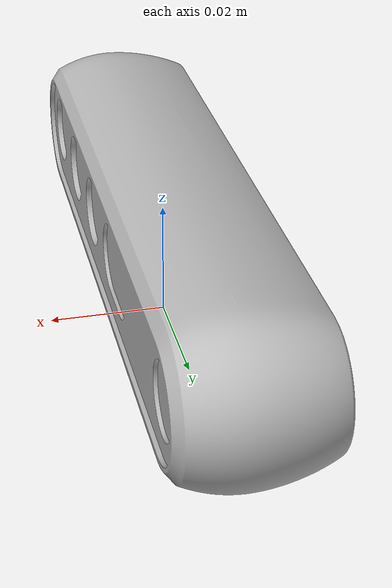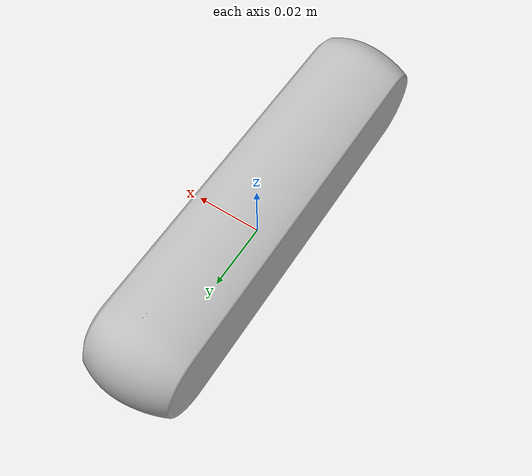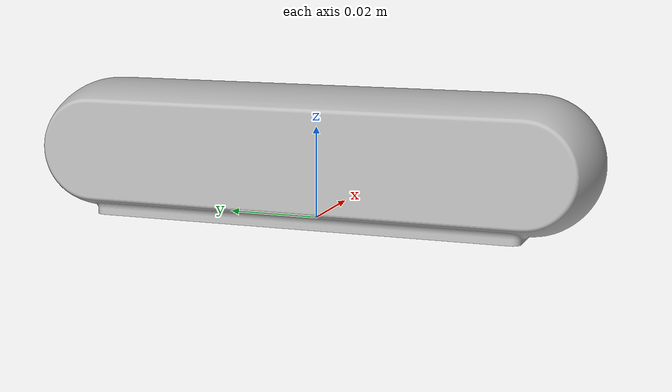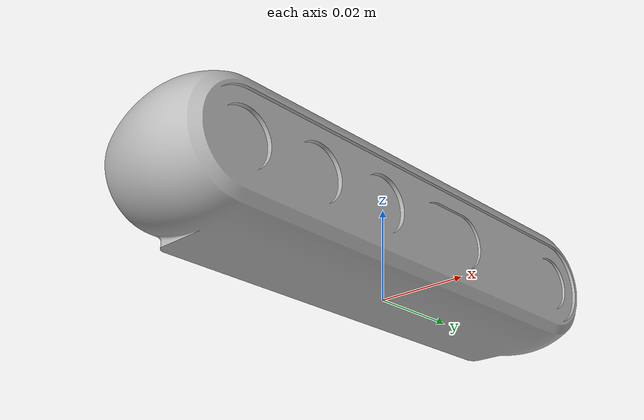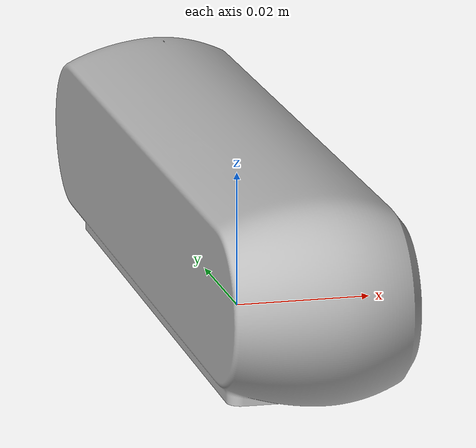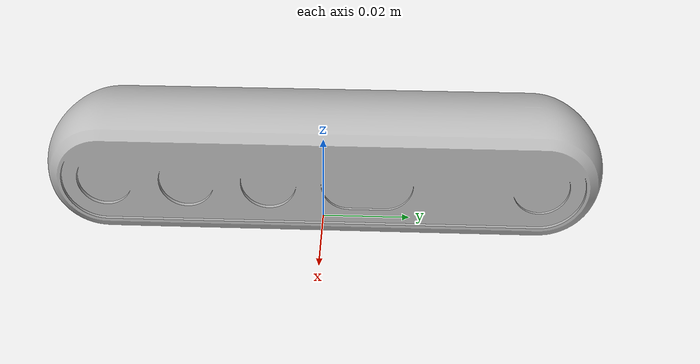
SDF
<?xml version='1.0'?>
<sdf version='1.6'>
  <model name='d455'>
    <link name='d455_map'>
      <pose frame=''>0 0 0 0 -0 0</pose>
      <inertial>
        <pose frame=''>0.01125 0.0475 0.0145 0 -0 0</pose>
        <mass>0.072</mass>
        <inertia>
          <ixx>0.00388124</ixx>
          <ixy>0</ixy>
          <ixz>0</ixz>
          <iyy>0.00049894</iyy>
          <iyz>0</iyz>
          <izz>0.00387926</izz>
        </inertia>
      </inertial>
      <gravity>0</gravity>
      <velocity_decay/>
      <self_collide>0</self_collide>
      <enable_wind>0</enable_wind>
      <kinematic>0</kinematic>
      <gravity>1</gravity>
      <sensor name='cameracolor' type='camera'>
        <camera name='camera'>
          <horizontal_fov>1.5708</horizontal_fov>
          <image>
            <width>1280</width>
            <height>800</height>
            <format>RGB_INT8</format>
          </image>
          <clip>
            <near>0.1</near>
            <far>100</far>
          </clip>
          <noise>
            <type>gaussian</type>
            <mean>0</mean>
            <stddev>0.007</stddev>
          </noise>
        </camera>
        <always_on>1</always_on>
        <update_rate>30</update_rate>
        <visualize>1</visualize>
        <pose frame=''>0.01125 0.0475 0.0145 0 -0 0</pose>
      </sensor>
      <sensor name='cameraired1' type='camera'>
        <camera name='camera'>
          <horizontal_fov>1.5708</horizontal_fov>
          <image>
            <width>1280</width>
            <height>800</height>
            <format>L_INT8</format>
          </image>
          <clip>
            <near>0.1</near>
            <far>100</far>
          </clip>
          <noise>
            <type>gaussian</type>
            <mean>0</mean>
            <stddev>0.05</stddev>
          </noise>
        </camera>
        <always_on>1</always_on>
        <update_rate>90</update_rate>
        <visualize>0</visualize>
        <pose frame=''>0.01125 0.0475 0.0145 0 -0 0</pose>
      </sensor>
      <sensor name='cameraired2' type='camera'>
        <camera name='camera'>
          <horizontal_fov>1.5708</horizontal_fov>
          <image>
            <width>1280</width>
            <height>800</height>
            <format>L_INT8</format>
          </image>
          <clip>
            <near>0.1</near>
            <far>100</far>
          </clip>
          <noise>
            <type>gaussian</type>
            <mean>0</mean>
            <stddev>0.05</stddev>
          </noise>
        </camera>
        <always_on>1</always_on>
        <update_rate>90</update_rate>
        <visualize>0</visualize>
        <pose frame=''>0.01125 0.0475 0.0145 0 -0 0</pose>
      </sensor>
      <sensor name='cameradepth' type='depth'>
        <camera name='camera'>
          <horizontal_fov>1.5708</horizontal_fov>
          <image>
            <width>1280</width>
            <height>800</height>
          </image>
          <clip>
            <near>0.1</near>
            <far>100</far>
          </clip>
          <noise>
            <type>gaussian</type>
            <mean>0</mean>
            <stddev>0.1</stddev>
          </noise>
        </camera>
        <always_on>1</always_on>
        <update_rate>90</update_rate>
        <visualize>0</visualize>
        <pose frame=''>0.01125 0.0475 0.0145 0 -0 0</pose>
      </sensor>
      <visual name='d455_map_fixed_joint_lump__camera_link_visual'>
        <pose frame=''>0.01125 0 0.0145 1.5708 -0 1.5708</pose>
        <geometry>
          <mesh>
            <scale>0.001 0.001 0.001</scale>
            <uri>/home/danilo/Desktop/sim_ws/src/realsense2_description/meshes/d455.stl</uri>
          </mesh>
        </geometry>
        <material>
          <script>
            <uri>__default__</uri>
            <name>__default__</name>
          </script>
          <shader type='vertex'>
            <normal_map>__default__</normal_map>
          </shader>
        </material>
        <transparency>0</transparency>
        <cast_shadows>1</cast_shadows>
      </visual>
      <collision name='d455_map_fixed_joint_lump__camera_link_collision'>
        <laser_retro>0</laser_retro>
        <max_contacts>10</max_contacts>
        <pose frame=''>0.0028 0 0.0145 0 -0 0</pose>
        <geometry>
          <box>
            <size>0.026 0.124 0.029</size>
          </box>
        </geometry>
        <surface>
          <friction>
            <ode>
              <mu>1</mu>
              <mu2>1</mu2>
              <fdir1>0 0 0</fdir1>
              <slip1>0</slip1>
              <slip2>0</slip2>
            </ode>
            <torsional>
              <coefficient>1</coefficient>
              <patch_radius>0</patch_radius>
              <surface_radius>0</surface_radius>
              <use_patch_radius>1</use_patch_radius>
              <ode>
                <slip>0</slip>
              </ode>
            </torsional>
          </friction>
          <bounce>
            <restitution_coefficient>0</restitution_coefficient>
            <threshold>1e+06</threshold>
          </bounce>
          <contact>
            <collide_without_contact>0</collide_without_contact>
            <collide_without_contact_bitmask>1</collide_without_contact_bitmask>
            <collide_bitmask>1</collide_bitmask>
            <ode>
              <soft_cfm>0</soft_cfm>
              <soft_erp>0.2</soft_erp>
              <kp>1e+13</kp>
              <kd>1</kd>
              <max_vel>0.01</max_vel>
              <min_depth>0</min_depth>
            </ode>
            <bullet>
              <split_impulse>1</split_impulse>
              <split_impulse_penetration_threshold>-0.01</split_impulse_penetration_threshold>
              <soft_cfm>0</soft_cfm>
              <soft_erp>0.2</soft_erp>
              <kp>1e+13</kp>
              <kd>1</kd>
            </bullet>
          </contact>
        </surface>
      </collision>
    </link>
    <static>0</static>
    <allow_auto_disable>1</allow_auto_disable>
    <plugin name='camera' filename='librealsense_gazebo_plugin.so'>
      <prefix>camera</prefix>
      <depthUpdateRate>30.0</depthUpdateRate>
      <colorUpdateRate>30.0</colorUpdateRate>
      <infraredUpdateRate>30.0</infraredUpdateRate>
      <depthTopicName>depth/image_raw</depthTopicName>
      <depthCameraInfoTopicName>depth/camera_info</depthCameraInfoTopicName>
      <colorTopicName>color/image_raw</colorTopicName>
      <colorCameraInfoTopicName>color/camera_info</colorCameraInfoTopicName>
      <infrared1TopicName>infra1/image_raw</infrared1TopicName>
      <infrared1CameraInfoTopicName>infra1/camera_info</infrared1CameraInfoTopicName>
      <infrared2TopicName>infra2/image_raw</infrared2TopicName>
      <infrared2CameraInfoTopicName>infra2/camera_info</infrared2CameraInfoTopicName>
      <colorOpticalframeName>camera_depth_optical_frame</colorOpticalframeName>
      <depthOpticalframeName>camera_depth_optical_frame</depthOpticalframeName>
      <infrared1OpticalframeName>camera_left_ir_optical_frame</infrared1OpticalframeName>
      <infrared2OpticalframeName>camera_right_ir_optical_frame</infrared2OpticalframeName>
      <rangeMinDepth>0.2</rangeMinDepth>
      <rangeMaxDepth>10.0</rangeMaxDepth>
      <pointCloud>1</pointCloud>
      <pointCloudTopicName>depth/color/points</pointCloudTopicName>
      <pointCloudCutoff>0.25</pointCloudCutoff>
      <pointCloudCutoffMax>9.0</pointCloudCutoffMax>
      <robotNamespace>/</robotNamespace>
    </plugin>
  </model>
</sdf>
